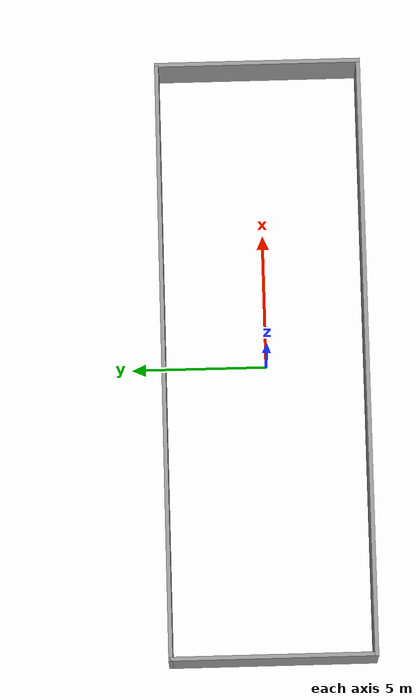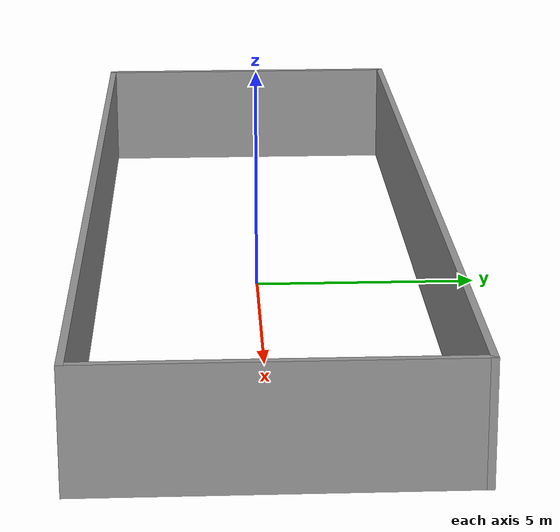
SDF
<?xml version='1.0'?>
<sdf version='1.7'>
  <model name='outer_walls'>
    <pose>0 0.05 0 0 -0 0</pose>
    <link name='Wall_6'>
      <collision name='Wall_6_Collision'>
        <geometry>
          <box>
            <size>22.35 0.15 2.5</size>
          </box>
        </geometry>
        <pose>0 0 1.25 0 -0 0</pose>
      </collision>
      <visual name='Wall_6_Visual'>
        <pose>0 0 1.25 0 -0 0</pose>
        <geometry>
          <box>
            <size>22.35 0.15 2.5</size>
          </box>
        </geometry>
        <material>
          <script>
            <uri>file://media/materials/scripts/gazebo.material</uri>
            <name>Gazebo/Grey</name>
          </script>
          <ambient>1 1 1 1</ambient>
        </material>
        <meta>
          <layer>0</layer>
        </meta>
      </visual>
      <pose>0 -3.75 0 0 -0 0</pose>
    </link>
    <link name='Wall_7'>
      <collision name='Wall_7_Collision'>
        <geometry>
          <box>
            <size>7.65 0.15 2.5</size>
          </box>
        </geometry>
        <pose>0 0 1.25 0 -0 0</pose>
      </collision>
      <visual name='Wall_7_Visual'>
        <pose>0 0 1.25 0 -0 0</pose>
        <geometry>
          <box>
            <size>7.65 0.15 2.5</size>
          </box>
        </geometry>
        <material>
          <script>
            <uri>file://media/materials/scripts/gazebo.material</uri>
            <name>Gazebo/Grey</name>
          </script>
          <ambient>1 1 1 1</ambient>
        </material>
        <meta>
          <layer>0</layer>
        </meta>
      </visual>
      <pose>11.1 0 0 0 -0 1.5708</pose>
    </link>
    <link name='Wall_8'>
      <collision name='Wall_8_Collision'>
        <geometry>
          <box>
            <size>22.35 0.15 2.5</size>
          </box>
        </geometry>
        <pose>0 0 1.25 0 -0 0</pose>
      </collision>
      <visual name='Wall_8_Visual'>
        <pose>0 0 1.25 0 -0 0</pose>
        <geometry>
          <box>
            <size>22.35 0.15 2.5</size>
          </box>
        </geometry>
        <material>
          <script>
            <uri>file://media/materials/scripts/gazebo.material</uri>
            <name>Gazebo/Grey</name>
          </script>
          <ambient>1 1 1 1</ambient>
        </material>
        <meta>
          <layer>0</layer>
        </meta>
      </visual>
      <pose>0 3.75 0 0 -0 3.14159</pose>
    </link>
    <link name='Wall_9'>
      <collision name='Wall_9_Collision'>
        <geometry>
          <box>
            <size>7.65 0.15 2.5</size>
          </box>
        </geometry>
        <pose>0 0 1.25 0 -0 0</pose>
      </collision>
      <visual name='Wall_9_Visual'>
        <pose>0 0 1.25 0 -0 0</pose>
        <geometry>
          <box>
            <size>7.65 0.15 2.5</size>
          </box>
        </geometry>
        <material>
          <script>
            <uri>file://media/materials/scripts/gazebo.material</uri>
            <name>Gazebo/Grey</name>
          </script>
          <ambient>1 1 1 1</ambient>
        </material>
        <meta>
          <layer>0</layer>
        </meta>
      </visual>
      <pose>-11.1 0 0 0 -0 -1.5708</pose>
    </link>
    <static>1</static>
  </model>
</sdf>
